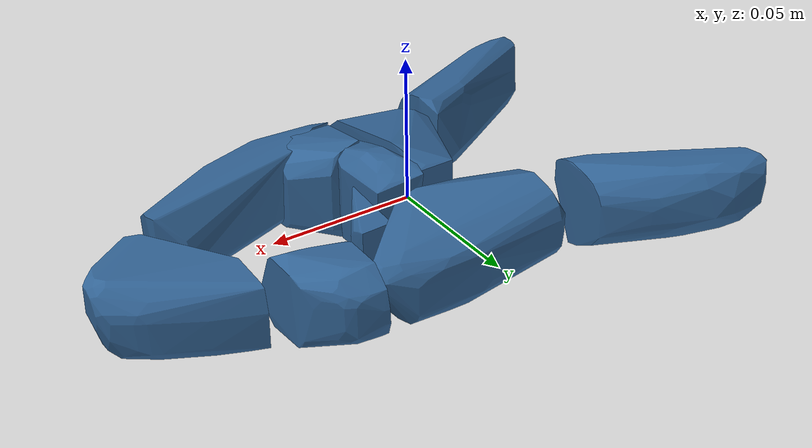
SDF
<?xml version='1.0' encoding='UTF-8'?>
<!-- This SDF was autogenerated by obj_to_drake_sdf.py -->
<sdf version="1.7">
  <model name="clamp">
    <link name="clamp">
      <inertial>
        <pose>0 0 0 0 0 0</pose>
        <mass>0.05</mass>
        <inertia>
          <ixx>7.4299284e-05</ixx>
          <iyy>0.00014828278</iyy>
          <izz>0.00021277824</izz>
          <ixy>-4.8875139e-06</ixy>
          <ixz>2.683741e-06</ixz>
          <iyz>-1.504576e-06</iyz>
        </inertia>
      </inertial>
      <visual name="convex_0">
        <pose>0 0 0 0 0 0</pose>
        <geometry>
          <mesh>
            <uri>clamp_convex_0.obj</uri>
          </mesh>
        </geometry>
        <material>
          <diffuse>0.19607843137254902 0.39215686274509803 0.5882352941176471 1</diffuse>
        </material>
      </visual>
      <collision name="convex_0_volume">
        <pose>0 0 0 0 0 0</pose>
        <geometry>
          <mesh>
            <uri>clamp_convex_0.obj</uri>
          </mesh>
        </geometry>
        <drake:proximity_properties xmlns:drake="uri:drake">
          <drake:compliant_hydroelastic/>
          <drake:hydroelastic_modulus> 3.0e7 </drake:hydroelastic_modulus>
          <drake:mesh_resolution_hint> 0.02 </drake:mesh_resolution_hint>
          <drake:hunt_crossley_dissipation>10</drake:hunt_crossley_dissipation>
          <drake:mu_dynamic>0.3</drake:mu_dynamic>
        </drake:proximity_properties>
      </collision>
      <visual name="convex_1">
        <pose>0 0 0 0 0 0</pose>
        <geometry>
          <mesh>
            <uri>clamp_convex_1.obj</uri>
          </mesh>
        </geometry>
        <material>
          <diffuse>0.19607843137254902 0.39215686274509803 0.5882352941176471 1</diffuse>
        </material>
      </visual>
      <collision name="convex_1_volume">
        <pose>0 0 0 0 0 0</pose>
        <geometry>
          <mesh>
            <uri>clamp_convex_1.obj</uri>
          </mesh>
        </geometry>
        <drake:proximity_properties xmlns:drake="uri:drake">
          <drake:compliant_hydroelastic/>
          <drake:hydroelastic_modulus> 3.0e7 </drake:hydroelastic_modulus>
          <drake:mesh_resolution_hint> 0.02 </drake:mesh_resolution_hint>
          <drake:hunt_crossley_dissipation>10</drake:hunt_crossley_dissipation>
          <drake:mu_dynamic>0.3</drake:mu_dynamic>
        </drake:proximity_properties>
      </collision>
      <visual name="convex_2">
        <pose>0 0 0 0 0 0</pose>
        <geometry>
          <mesh>
            <uri>clamp_convex_2.obj</uri>
          </mesh>
        </geometry>
        <material>
          <diffuse>0.19607843137254902 0.39215686274509803 0.5882352941176471 1</diffuse>
        </material>
      </visual>
      <collision name="convex_2_volume">
        <pose>0 0 0 0 0 0</pose>
        <geometry>
          <mesh>
            <uri>clamp_convex_2.obj</uri>
          </mesh>
        </geometry>
        <drake:proximity_properties xmlns:drake="uri:drake">
          <drake:compliant_hydroelastic/>
          <drake:hydroelastic_modulus> 3.0e7 </drake:hydroelastic_modulus>
          <drake:mesh_resolution_hint> 0.02 </drake:mesh_resolution_hint>
          <drake:hunt_crossley_dissipation>10</drake:hunt_crossley_dissipation>
          <drake:mu_dynamic>0.3</drake:mu_dynamic>
        </drake:proximity_properties>
      </collision>
      <visual name="convex_3">
        <pose>0 0 0 0 0 0</pose>
        <geometry>
          <mesh>
            <uri>clamp_convex_3.obj</uri>
          </mesh>
        </geometry>
        <material>
          <diffuse>0.19607843137254902 0.39215686274509803 0.5882352941176471 1</diffuse>
        </material>
      </visual>
      <collision name="convex_3_volume">
        <pose>0 0 0 0 0 0</pose>
        <geometry>
          <mesh>
            <uri>clamp_convex_3.obj</uri>
          </mesh>
        </geometry>
        <drake:proximity_properties xmlns:drake="uri:drake">
          <drake:compliant_hydroelastic/>
          <drake:hydroelastic_modulus> 3.0e7 </drake:hydroelastic_modulus>
          <drake:mesh_resolution_hint> 0.02 </drake:mesh_resolution_hint>
          <drake:hunt_crossley_dissipation>10</drake:hunt_crossley_dissipation>
          <drake:mu_dynamic>0.3</drake:mu_dynamic>
        </drake:proximity_properties>
      </collision>
      <visual name="convex_4">
        <pose>0 0 0 0 0 0</pose>
        <geometry>
          <mesh>
            <uri>clamp_convex_4.obj</uri>
          </mesh>
        </geometry>
        <material>
          <diffuse>0.19607843137254902 0.39215686274509803 0.5882352941176471 1</diffuse>
        </material>
      </visual>
      <collision name="convex_4_volume">
        <pose>0 0 0 0 0 0</pose>
        <geometry>
          <mesh>
            <uri>clamp_convex_4.obj</uri>
          </mesh>
        </geometry>
        <drake:proximity_properties xmlns:drake="uri:drake">
          <drake:compliant_hydroelastic/>
          <drake:hydroelastic_modulus> 3.0e7 </drake:hydroelastic_modulus>
          <drake:mesh_resolution_hint> 0.02 </drake:mesh_resolution_hint>
          <drake:hunt_crossley_dissipation>10</drake:hunt_crossley_dissipation>
          <drake:mu_dynamic>0.3</drake:mu_dynamic>
        </drake:proximity_properties>
      </collision>
      <visual name="convex_5">
        <pose>0 0 0 0 0 0</pose>
        <geometry>
          <mesh>
            <uri>clamp_convex_5.obj</uri>
          </mesh>
        </geometry>
        <material>
          <diffuse>0.19607843137254902 0.39215686274509803 0.5882352941176471 1</diffuse>
        </material>
      </visual>
      <collision name="convex_5_volume">
        <pose>0 0 0 0 0 0</pose>
        <geometry>
          <mesh>
            <uri>clamp_convex_5.obj</uri>
          </mesh>
        </geometry>
        <drake:proximity_properties xmlns:drake="uri:drake">
          <drake:compliant_hydroelastic/>
          <drake:hydroelastic_modulus> 3.0e7 </drake:hydroelastic_modulus>
          <drake:mesh_resolution_hint> 0.02 </drake:mesh_resolution_hint>
          <drake:hunt_crossley_dissipation>10</drake:hunt_crossley_dissipation>
          <drake:mu_dynamic>0.3</drake:mu_dynamic>
        </drake:proximity_properties>
      </collision>
      <visual name="convex_6">
        <pose>0 0 0 0 0 0</pose>
        <geometry>
          <mesh>
            <uri>clamp_convex_6.obj</uri>
          </mesh>
        </geometry>
        <material>
          <diffuse>0.19607843137254902 0.39215686274509803 0.5882352941176471 1</diffuse>
        </material>
      </visual>
      <collision name="convex_6_volume">
        <pose>0 0 0 0 0 0</pose>
        <geometry>
          <mesh>
            <uri>clamp_convex_6.obj</uri>
          </mesh>
        </geometry>
        <drake:proximity_properties xmlns:drake="uri:drake">
          <drake:compliant_hydroelastic/>
          <drake:hydroelastic_modulus> 3.0e7 </drake:hydroelastic_modulus>
          <drake:mesh_resolution_hint> 0.02 </drake:mesh_resolution_hint>
          <drake:hunt_crossley_dissipation>10</drake:hunt_crossley_dissipation>
          <drake:mu_dynamic>0.3</drake:mu_dynamic>
        </drake:proximity_properties>
      </collision>
      <visual name="convex_7">
        <pose>0 0 0 0 0 0</pose>
        <geometry>
          <mesh>
            <uri>clamp_convex_7.obj</uri>
          </mesh>
        </geometry>
        <material>
          <diffuse>0.19607843137254902 0.39215686274509803 0.5882352941176471 1</diffuse>
        </material>
      </visual>
      <collision name="convex_7_volume">
        <pose>0 0 0 0 0 0</pose>
        <geometry>
          <mesh>
            <uri>clamp_convex_7.obj</uri>
          </mesh>
        </geometry>
        <drake:proximity_properties xmlns:drake="uri:drake">
          <drake:compliant_hydroelastic/>
          <drake:hydroelastic_modulus> 3.0e7 </drake:hydroelastic_modulus>
          <drake:mesh_resolution_hint> 0.02 </drake:mesh_resolution_hint>
          <drake:hunt_crossley_dissipation>10</drake:hunt_crossley_dissipation>
          <drake:mu_dynamic>0.3</drake:mu_dynamic>
        </drake:proximity_properties>
      </collision>
      <visual name="convex_8">
        <pose>0 0 0 0 0 0</pose>
        <geometry>
          <mesh>
            <uri>clamp_convex_8.obj</uri>
          </mesh>
        </geometry>
        <material>
          <diffuse>0.19607843137254902 0.39215686274509803 0.5882352941176471 1</diffuse>
        </material>
      </visual>
      <collision name="convex_8_volume">
        <pose>0 0 0 0 0 0</pose>
        <geometry>
          <mesh>
            <uri>clamp_convex_8.obj</uri>
          </mesh>
        </geometry>
        <drake:proximity_properties xmlns:drake="uri:drake">
          <drake:compliant_hydroelastic/>
          <drake:hydroelastic_modulus> 3.0e7 </drake:hydroelastic_modulus>
          <drake:mesh_resolution_hint> 0.02 </drake:mesh_resolution_hint>
          <drake:hunt_crossley_dissipation>10</drake:hunt_crossley_dissipation>
          <drake:mu_dynamic>0.3</drake:mu_dynamic>
        </drake:proximity_properties>
      </collision>
      <visual name="convex_9">
        <pose>0 0 0 0 0 0</pose>
        <geometry>
          <mesh>
            <uri>clamp_convex_9.obj</uri>
          </mesh>
        </geometry>
        <material>
          <diffuse>0.19607843137254902 0.39215686274509803 0.5882352941176471 1</diffuse>
        </material>
      </visual>
      <collision name="convex_9_volume">
        <pose>0 0 0 0 0 0</pose>
        <geometry>
          <mesh>
            <uri>clamp_convex_9.obj</uri>
          </mesh>
        </geometry>
        <drake:proximity_properties xmlns:drake="uri:drake">
          <drake:compliant_hydroelastic/>
          <drake:hydroelastic_modulus> 3.0e7 </drake:hydroelastic_modulus>
          <drake:mesh_resolution_hint> 0.02 </drake:mesh_resolution_hint>
          <drake:hunt_crossley_dissipation>10</drake:hunt_crossley_dissipation>
          <drake:mu_dynamic>0.3</drake:mu_dynamic>
        </drake:proximity_properties>
      </collision>
    </link>
  </model>
</sdf>
